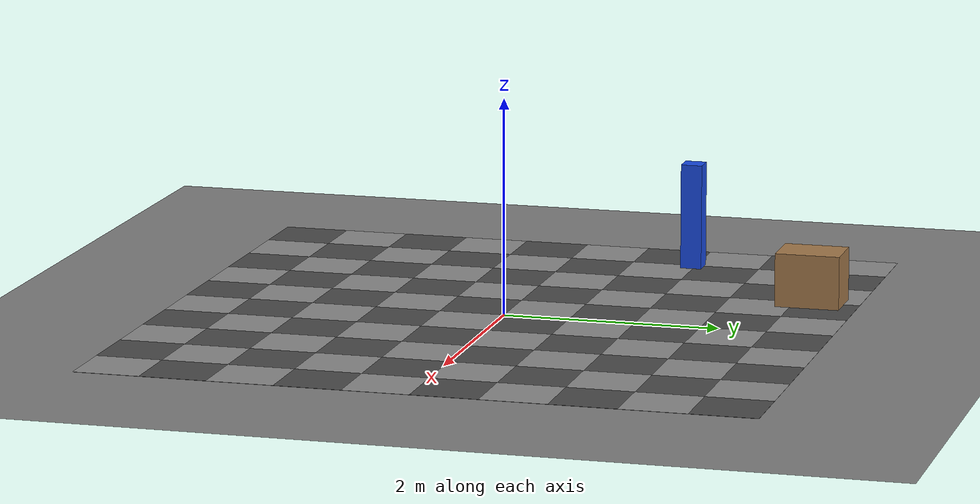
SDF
<sdf version="1.9">
 <world name="ecps295_camtest">
  <model name="ground_plane">
   <static>true</static>
   <link name="link">
    <collision name="collision">
     <geometry><plane><normal>0 0 1</normal><size>50 50</size></plane></geometry>
    </collision>
    <visual name="visual">
     <geometry><plane><normal>0 0 1</normal><size>50 50</size></plane></geometry>
     <material><ambient>0.5 0.5 0.5 1</ambient><diffuse>0.5 0.5 0.5 1</diffuse></material>
    </visual>
   </link>
  </model>
  <model name="eva_mat">
   <static>true</static>
   <link name="link">
    <visual name="t0_0">
     <pose>-2.745 -2.745 0.001 0 0 0</pose>
     <geometry><box><size>0.61 0.61 0.002</size></box></geometry>
     <material><ambient>0.3 0.3 0.3 1</ambient><diffuse>0.3 0.3 0.3 1</diffuse></material>
    </visual>
    <visual name="t0_1">
     <pose>-2.745 -2.135 0.001 0 0 0</pose>
     <geometry><box><size>0.61 0.61 0.002</size></box></geometry>
     <material><ambient>0.55 0.55 0.55 1</ambient><diffuse>0.55 0.55 0.55 1</diffuse></material>
    </visual>
    <visual name="t0_2">
     <pose>-2.745 -1.525 0.001 0 0 0</pose>
     <geometry><box><size>0.61 0.61 0.002</size></box></geometry>
     <material><ambient>0.3 0.3 0.3 1</ambient><diffuse>0.3 0.3 0.3 1</diffuse></material>
    </visual>
    <visual name="t0_3">
     <pose>-2.745 -0.915 0.001 0 0 0</pose>
     <geometry><box><size>0.61 0.61 0.002</size></box></geometry>
     <material><ambient>0.55 0.55 0.55 1</ambient><diffuse>0.55 0.55 0.55 1</diffuse></material>
    </visual>
    <visual name="t0_4">
     <pose>-2.745 -0.305 0.001 0 0 0</pose>
     <geometry><box><size>0.61 0.61 0.002</size></box></geometry>
     <material><ambient>0.3 0.3 0.3 1</ambient><diffuse>0.3 0.3 0.3 1</diffuse></material>
    </visual>
    <visual name="t0_5">
     <pose>-2.745 0.305 0.001 0 0 0</pose>
     <geometry><box><size>0.61 0.61 0.002</size></box></geometry>
     <material><ambient>0.55 0.55 0.55 1</ambient><diffuse>0.55 0.55 0.55 1</diffuse></material>
    </visual>
    <visual name="t0_6">
     <pose>-2.745 0.915 0.001 0 0 0</pose>
     <geometry><box><size>0.61 0.61 0.002</size></box></geometry>
     <material><ambient>0.3 0.3 0.3 1</ambient><diffuse>0.3 0.3 0.3 1</diffuse></material>
    </visual>
    <visual name="t0_7">
     <pose>-2.745 1.525 0.001 0 0 0</pose>
     <geometry><box><size>0.61 0.61 0.002</size></box></geometry>
     <material><ambient>0.55 0.55 0.55 1</ambient><diffuse>0.55 0.55 0.55 1</diffuse></material>
    </visual>
    <visual name="t0_8">
     <pose>-2.745 2.135 0.001 0 0 0</pose>
     <geometry><box><size>0.61 0.61 0.002</size></box></geometry>
     <material><ambient>0.3 0.3 0.3 1</ambient><diffuse>0.3 0.3 0.3 1</diffuse></material>
    </visual>
    <visual name="t0_9">
     <pose>-2.745 2.745 0.001 0 0 0</pose>
     <geometry><box><size>0.61 0.61 0.002</size></box></geometry>
     <material><ambient>0.55 0.55 0.55 1</ambient><diffuse>0.55 0.55 0.55 1</diffuse></material>
    </visual>
    <visual name="t1_0">
     <pose>-2.135 -2.745 0.001 0 0 0</pose>
     <geometry><box><size>0.61 0.61 0.002</size></box></geometry>
     <material><ambient>0.55 0.55 0.55 1</ambient><diffuse>0.55 0.55 0.55 1</diffuse></material>
    </visual>
    <visual name="t1_1">
     <pose>-2.135 -2.135 0.001 0 0 0</pose>
     <geometry><box><size>0.61 0.61 0.002</size></box></geometry>
     <material><ambient>0.3 0.3 0.3 1</ambient><diffuse>0.3 0.3 0.3 1</diffuse></material>
    </visual>
    <visual name="t1_2">
     <pose>-2.135 -1.525 0.001 0 0 0</pose>
     <geometry><box><size>0.61 0.61 0.002</size></box></geometry>
     <material><ambient>0.55 0.55 0.55 1</ambient><diffuse>0.55 0.55 0.55 1</diffuse></material>
    </visual>
    <visual name="t1_3">
     <pose>-2.135 -0.915 0.001 0 0 0</pose>
     <geometry><box><size>0.61 0.61 0.002</size></box></geometry>
     <material><ambient>0.3 0.3 0.3 1</ambient><diffuse>0.3 0.3 0.3 1</diffuse></material>
    </visual>
    <visual name="t1_4">
     <pose>-2.135 -0.305 0.001 0 0 0</pose>
     <geometry><box><size>0.61 0.61 0.002</size></box></geometry>
     <material><ambient>0.55 0.55 0.55 1</ambient><diffuse>0.55 0.55 0.55 1</diffuse></material>
    </visual>
    <visual name="t1_5">
     <pose>-2.135 0.305 0.001 0 0 0</pose>
     <geometry><box><size>0.61 0.61 0.002</size></box></geometry>
     <material><ambient>0.3 0.3 0.3 1</ambient><diffuse>0.3 0.3 0.3 1</diffuse></material>
    </visual>
    <visual name="t1_6">
     <pose>-2.135 0.915 0.001 0 0 0</pose>
     <geometry><box><size>0.61 0.61 0.002</size></box></geometry>
     <material><ambient>0.55 0.55 0.55 1</ambient><diffuse>0.55 0.55 0.55 1</diffuse></material>
    </visual>
    <visual name="t1_7">
     <pose>-2.135 1.525 0.001 0 0 0</pose>
     <geometry><box><size>0.61 0.61 0.002</size></box></geometry>
     <material><ambient>0.3 0.3 0.3 1</ambient><diffuse>0.3 0.3 0.3 1</diffuse></material>
    </visual>
    <visual name="t1_8">
     <pose>-2.135 2.135 0.001 0 0 0</pose>
     <geometry><box><size>0.61 0.61 0.002</size></box></geometry>
     <material><ambient>0.55 0.55 0.55 1</ambient><diffuse>0.55 0.55 0.55 1</diffuse></material>
    </visual>
    <visual name="t1_9">
     <pose>-2.135 2.745 0.001 0 0 0</pose>
     <geometry><box><size>0.61 0.61 0.002</size></box></geometry>
     <material><ambient>0.3 0.3 0.3 1</ambient><diffuse>0.3 0.3 0.3 1</diffuse></material>
    </visual>
    <visual name="t2_0">
     <pose>-1.525 -2.745 0.001 0 0 0</pose>
     <geometry><box><size>0.61 0.61 0.002</size></box></geometry>
     <material><ambient>0.3 0.3 0.3 1</ambient><diffuse>0.3 0.3 0.3 1</diffuse></material>
    </visual>
    <visual name="t2_1">
     <pose>-1.525 -2.135 0.001 0 0 0</pose>
     <geometry><box><size>0.61 0.61 0.002</size></box></geometry>
     <material><ambient>0.55 0.55 0.55 1</ambient><diffuse>0.55 0.55 0.55 1</diffuse></material>
    </visual>
    <visual name="t2_2">
     <pose>-1.525 -1.525 0.001 0 0 0</pose>
     <geometry><box><size>0.61 0.61 0.002</size></box></geometry>
     <material><ambient>0.3 0.3 0.3 1</ambient><diffuse>0.3 0.3 0.3 1</diffuse></material>
    </visual>
    <visual name="t2_3">
     <pose>-1.525 -0.915 0.001 0 0 0</pose>
     <geometry><box><size>0.61 0.61 0.002</size></box></geometry>
     <material><ambient>0.55 0.55 0.55 1</ambient><diffuse>0.55 0.55 0.55 1</diffuse></material>
    </visual>
    <visual name="t2_4">
     <pose>-1.525 -0.305 0.001 0 0 0</pose>
     <geometry><box><size>0.61 0.61 0.002</size></box></geometry>
     <material><ambient>0.3 0.3 0.3 1</ambient><diffuse>0.3 0.3 0.3 1</diffuse></material>
    </visual>
    <visual name="t2_5">
     <pose>-1.525 0.305 0.001 0 0 0</pose>
     <geometry><box><size>0.61 0.61 0.002</size></box></geometry>
     <material><ambient>0.55 0.55 0.55 1</ambient><diffuse>0.55 0.55 0.55 1</diffuse></material>
    </visual>
    <visual name="t2_6">
     <pose>-1.525 0.915 0.001 0 0 0</pose>
     <geometry><box><size>0.61 0.61 0.002</size></box></geometry>
     <material><ambient>0.3 0.3 0.3 1</ambient><diffuse>0.3 0.3 0.3 1</diffuse></material>
    </visual>
    <visual name="t2_7">
     <pose>-1.525 1.525 0.001 0 0 0</pose>
     <geometry><box><size>0.61 0.61 0.002</size></box></geometry>
     <material><ambient>0.55 0.55 0.55 1</ambient><diffuse>0.55 0.55 0.55 1</diffuse></material>
    </visual>
    <visual name="t2_8">
     <pose>-1.525 2.135 0.001 0 0 0</pose>
     <geometry><box><size>0.61 0.61 0.002</size></box></geometry>
     <material><ambient>0.3 0.3 0.3 1</ambient><diffuse>0.3 0.3 0.3 1</diffuse></material>
    </visual>
    <visual name="t2_9">
     <pose>-1.525 2.745 0.001 0 0 0</pose>
     <geometry><box><size>0.61 0.61 0.002</size></box></geometry>
     <material><ambient>0.55 0.55 0.55 1</ambient><diffuse>0.55 0.55 0.55 1</diffuse></material>
    </visual>
    <visual name="t3_0">
     <pose>-0.915 -2.745 0.001 0 0 0</pose>
     <geometry><box><size>0.61 0.61 0.002</size></box></geometry>
     <material><ambient>0.55 0.55 0.55 1</ambient><diffuse>0.55 0.55 0.55 1</diffuse></material>
    </visual>
    <visual name="t3_1">
     <pose>-0.915 -2.135 0.001 0 0 0</pose>
     <geometry><box><size>0.61 0.61 0.002</size></box></geometry>
     <material><ambient>0.3 0.3 0.3 1</ambient><diffuse>0.3 0.3 0.3 1</diffuse></material>
    </visual>
    <visual name="t3_2">
     <pose>-0.915 -1.525 0.001 0 0 0</pose>
     <geometry><box><size>0.61 0.61 0.002</size></box></geometry>
     <material><ambient>0.55 0.55 0.55 1</ambient><diffuse>0.55 0.55 0.55 1</diffuse></material>
    </visual>
    <visual name="t3_3">
     <pose>-0.915 -0.915 0.001 0 0 0</pose>
     <geometry><box><size>0.61 0.61 0.002</size></box></geometry>
     <material><ambient>0.3 0.3 0.3 1</ambient><diffuse>0.3 0.3 0.3 1</diffuse></material>
    </visual>
    <visual name="t3_4">
     <pose>-0.915 -0.305 0.001 0 0 0</pose>
     <geometry><box><size>0.61 0.61 0.002</size></box></geometry>
     <material><ambient>0.55 0.55 0.55 1</ambient><diffuse>0.55 0.55 0.55 1</diffuse></material>
    </visual>
    <visual name="t3_5">
     <pose>-0.915 0.305 0.001 0 0 0</pose>
     <geometry><box><size>0.61 0.61 0.002</size></box></geometry>
     <material><ambient>0.3 0.3 0.3 1</ambient><diffuse>0.3 0.3 0.3 1</diffuse></material>
    </visual>
    <visual name="t3_6">
     <pose>-0.915 0.915 0.001 0 0 0</pose>
     <geometry><box><size>0.61 0.61 0.002</size></box></geometry>
     <material><ambient>0.55 0.55 0.55 1</ambient><diffuse>0.55 0.55 0.55 1</diffuse></material>
    </visual>
    <visual name="t3_7">
     <pose>-0.915 1.525 0.001 0 0 0</pose>
     <geometry><box><size>0.61 0.61 0.002</size></box></geometry>
     <material><ambient>0.3 0.3 0.3 1</ambient><diffuse>0.3 0.3 0.3 1</diffuse></material>
    </visual>
    <visual name="t3_8">
     <pose>-0.915 2.135 0.001 0 0 0</pose>
     <geometry><box><size>0.61 0.61 0.002</size></box></geometry>
     <material><ambient>0.55 0.55 0.55 1</ambient><diffuse>0.55 0.55 0.55 1</diffuse></material>
    </visual>
    <visual name="t3_9">
     <pose>-0.915 2.745 0.001 0 0 0</pose>
     <geometry><box><size>0.61 0.61 0.002</size></box></geometry>
     <material><ambient>0.3 0.3 0.3 1</ambient><diffuse>0.3 0.3 0.3 1</diffuse></material>
    </visual>
    <visual name="t4_0">
     <pose>-0.305 -2.745 0.001 0 0 0</pose>
     <geometry><box><size>0.61 0.61 0.002</size></box></geometry>
     <material><ambient>0.3 0.3 0.3 1</ambient><diffuse>0.3 0.3 0.3 1</diffuse></material>
    </visual>
    <visual name="t4_1">
     <pose>-0.305 -2.135 0.001 0 0 0</pose>
     <geometry><box><size>0.61 0.61 0.002</size></box></geometry>
     <material><ambient>0.55 0.55 0.55 1</ambient><diffuse>0.55 0.55 0.55 1</diffuse></material>
    </visual>
    <visual name="t4_2">
     <pose>-0.305 -1.525 0.001 0 0 0</pose>
     <geometry><box><size>0.61 0.61 0.002</size></box></geometry>
     <material><ambient>0.3 0.3 0.3 1</ambient><diffuse>0.3 0.3 0.3 1</diffuse></material>
    </visual>
    <visual name="t4_3">
     <pose>-0.305 -0.915 0.001 0 0 0</pose>
     <geometry><box><size>0.61 0.61 0.002</size></box></geometry>
     <material><ambient>0.55 0.55 0.55 1</ambient><diffuse>0.55 0.55 0.55 1</diffuse></material>
    </visual>
    <visual name="t4_4">
     <pose>-0.305 -0.305 0.001 0 0 0</pose>
     <geometry><box><size>0.61 0.61 0.002</size></box></geometry>
     <material><ambient>0.3 0.3 0.3 1</ambient><diffuse>0.3 0.3 0.3 1</diffuse></material>
    </visual>
    <visual name="t4_5">
     <pose>-0.305 0.305 0.001 0 0 0</pose>
     <geometry><box><size>0.61 0.61 0.002</size></box></geometry>
     <material><ambient>0.55 0.55 0.55 1</ambient><diffuse>0.55 0.55 0.55 1</diffuse></material>
    </visual>
    <visual name="t4_6">
     <pose>-0.305 0.915 0.001 0 0 0</pose>
     <geometry><box><size>0.61 0.61 0.002</size></box></geometry>
     <material><ambient>0.3 0.3 0.3 1</ambient><diffuse>0.3 0.3 0.3 1</diffuse></material>
    </visual>
    <visual name="t4_7">
     <pose>-0.305 1.525 0.001 0 0 0</pose>
     <geometry><box><size>0.61 0.61 0.002</size></box></geometry>
     <material><ambient>0.55 0.55 0.55 1</ambient><diffuse>0.55 0.55 0.55 1</diffuse></material>
    </visual>
    <visual name="t4_8">
     <pose>-0.305 2.135 0.001 0 0 0</pose>
     <geometry><box><size>0.61 0.61 0.002</size></box></geometry>
     <material><ambient>0.3 0.3 0.3 1</ambient><diffuse>0.3 0.3 0.3 1</diffuse></material>
    </visual>
    <visual name="t4_9">
     <pose>-0.305 2.745 0.001 0 0 0</pose>
     <geometry><box><size>0.61 0.61 0.002</size></box></geometry>
     <material><ambient>0.55 0.55 0.55 1</ambient><diffuse>0.55 0.55 0.55 1</diffuse></material>
    </visual>
    <visual name="t5_0">
     <pose>0.305 -2.745 0.001 0 0 0</pose>
     <geometry><box><size>0.61 0.61 0.002</size></box></geometry>
     <material><ambient>0.55 0.55 0.55 1</ambient><diffuse>0.55 0.55 0.55 1</diffuse></material>
    </visual>
    <visual name="t5_1">
     <pose>0.305 -2.135 0.001 0 0 0</pose>
     <geometry><box><size>0.61 0.61 0.002</size></box></geometry>
     <material><ambient>0.3 0.3 0.3 1</ambient><diffuse>0.3 0.3 0.3 1</diffuse></material>
    </visual>
    <visual name="t5_2">
     <pose>0.305 -1.525 0.001 0 0 0</pose>
     <geometry><box><size>0.61 0.61 0.002</size></box></geometry>
     <material><ambient>0.55 0.55 0.55 1</ambient><diffuse>0.55 0.55 0.55 1</diffuse></material>
    </visual>
    <visual name="t5_3">
     <pose>0.305 -0.915 0.001 0 0 0</pose>
     <geometry><box><size>0.61 0.61 0.002</size></box></geometry>
     <material><ambient>0.3 0.3 0.3 1</ambient><diffuse>0.3 0.3 0.3 1</diffuse></material>
    </visual>
    <visual name="t5_4">
     <pose>0.305 -0.305 0.001 0 0 0</pose>
     <geometry><box><size>0.61 0.61 0.002</size></box></geometry>
     <material><ambient>0.55 0.55 0.55 1</ambient><diffuse>0.55 0.55 0.55 1</diffuse></material>
    </visual>
    <visual name="t5_5">
     <pose>0.305 0.305 0.001 0 0 0</pose>
     <geometry><box><size>0.61 0.61 0.002</size></box></geometry>
     <material><ambient>0.3 0.3 0.3 1</ambient><diffuse>0.3 0.3 0.3 1</diffuse></material>
    </visual>
    <visual name="t5_6">
     <pose>0.305 0.915 0.001 0 0 0</pose>
     <geometry><box><size>0.61 0.61 0.002</size></box></geometry>
     <material><ambient>0.55 0.55 0.55 1</ambient><diffuse>0.55 0.55 0.55 1</diffuse></material>
    </visual>
    <visual name="t5_7">
     <pose>0.305 1.525 0.001 0 0 0</pose>
     <geometry><box><size>0.61 0.61 0.002</size></box></geometry>
     <material><ambient>0.3 0.3 0.3 1</ambient><diffuse>0.3 0.3 0.3 1</diffuse></material>
    </visual>
    <visual name="t5_8">
     <pose>0.305 2.135 0.001 0 0 0</pose>
     <geometry><box><size>0.61 0.61 0.002</size></box></geometry>
     <material><ambient>0.55 0.55 0.55 1</ambient><diffuse>0.55 0.55 0.55 1</diffuse></material>
    </visual>
    <visual name="t5_9">
     <pose>0.305 2.745 0.001 0 0 0</pose>
     <geometry><box><size>0.61 0.61 0.002</size></box></geometry>
     <material><ambient>0.3 0.3 0.3 1</ambient><diffuse>0.3 0.3 0.3 1</diffuse></material>
    </visual>
    <visual name="t6_0">
     <pose>0.915 -2.745 0.001 0 0 0</pose>
     <geometry><box><size>0.61 0.61 0.002</size></box></geometry>
     <material><ambient>0.3 0.3 0.3 1</ambient><diffuse>0.3 0.3 0.3 1</diffuse></material>
    </visual>
    <visual name="t6_1">
     <pose>0.915 -2.135 0.001 0 0 0</pose>
     <geometry><box><size>0.61 0.61 0.002</size></box></geometry>
     <material><ambient>0.55 0.55 0.55 1</ambient><diffuse>0.55 0.55 0.55 1</diffuse></material>
    </visual>
    <visual name="t6_2">
     <pose>0.915 -1.525 0.001 0 0 0</pose>
     <geometry><box><size>0.61 0.61 0.002</size></box></geometry>
     <material><ambient>0.3 0.3 0.3 1</ambient><diffuse>0.3 0.3 0.3 1</diffuse></material>
    </visual>
    <visual name="t6_3">
     <pose>0.915 -0.915 0.001 0 0 0</pose>
     <geometry><box><size>0.61 0.61 0.002</size></box></geometry>
     <material><ambient>0.55 0.55 0.55 1</ambient><diffuse>0.55 0.55 0.55 1</diffuse></material>
    </visual>
    <visual name="t6_4">
     <pose>0.915 -0.305 0.001 0 0 0</pose>
     <geometry><box><size>0.61 0.61 0.002</size></box></geometry>
     <material><ambient>0.3 0.3 0.3 1</ambient><diffuse>0.3 0.3 0.3 1</diffuse></material>
    </visual>
    <visual name="t6_5">
     <pose>0.915 0.305 0.001 0 0 0</pose>
     <geometry><box><size>0.61 0.61 0.002</size></box></geometry>
     <material><ambient>0.55 0.55 0.55 1</ambient><diffuse>0.55 0.55 0.55 1</diffuse></material>
    </visual>
    <visual name="t6_6">
     <pose>0.915 0.915 0.001 0 0 0</pose>
     <geometry><box><size>0.61 0.61 0.002</size></box></geometry>
     <material><ambient>0.3 0.3 0.3 1</ambient><diffuse>0.3 0.3 0.3 1</diffuse></material>
    </visual>
    <visual name="t6_7">
     <pose>0.915 1.525 0.001 0 0 0</pose>
     <geometry><box><size>0.61 0.61 0.002</size></box></geometry>
     <material><ambient>0.55 0.55 0.55 1</ambient><diffuse>0.55 0.55 0.55 1</diffuse></material>
    </visual>
    <visual name="t6_8">
     <pose>0.915 2.135 0.001 0 0 0</pose>
     <geometry><box><size>0.61 0.61 0.002</size></box></geometry>
     <material><ambient>0.3 0.3 0.3 1</ambient><diffuse>0.3 0.3 0.3 1</diffuse></material>
    </visual>
    <visual name="t6_9">
     <pose>0.915 2.745 0.001 0 0 0</pose>
     <geometry><box><size>0.61 0.61 0.002</size></box></geometry>
     <material><ambient>0.55 0.55 0.55 1</ambient><diffuse>0.55 0.55 0.55 1</diffuse></material>
    </visual>
    <visual name="t7_0">
     <pose>1.525 -2.745 0.001 0 0 0</pose>
     <geometry><box><size>0.61 0.61 0.002</size></box></geometry>
     <material><ambient>0.55 0.55 0.55 1</ambient><diffuse>0.55 0.55 0.55 1</diffuse></material>
    </visual>
    <visual name="t7_1">
     <pose>1.525 -2.135 0.001 0 0 0</pose>
     <geometry><box><size>0.61 0.61 0.002</size></box></geometry>
     <material><ambient>0.3 0.3 0.3 1</ambient><diffuse>0.3 0.3 0.3 1</diffuse></material>
    </visual>
    <visual name="t7_2">
     <pose>1.525 -1.525 0.001 0 0 0</pose>
     <geometry><box><size>0.61 0.61 0.002</size></box></geometry>
     <material><ambient>0.55 0.55 0.55 1</ambient><diffuse>0.55 0.55 0.55 1</diffuse></material>
    </visual>
    <visual name="t7_3">
     <pose>1.525 -0.915 0.001 0 0 0</pose>
     <geometry><box><size>0.61 0.61 0.002</size></box></geometry>
     <material><ambient>0.3 0.3 0.3 1</ambient><diffuse>0.3 0.3 0.3 1</diffuse></material>
    </visual>
    <visual name="t7_4">
     <pose>1.525 -0.305 0.001 0 0 0</pose>
     <geometry><box><size>0.61 0.61 0.002</size></box></geometry>
     <material><ambient>0.55 0.55 0.55 1</ambient><diffuse>0.55 0.55 0.55 1</diffuse></material>
    </visual>
    <visual name="t7_5">
     <pose>1.525 0.305 0.001 0 0 0</pose>
     <geometry><box><size>0.61 0.61 0.002</size></box></geometry>
     <material><ambient>0.3 0.3 0.3 1</ambient><diffuse>0.3 0.3 0.3 1</diffuse></material>
    </visual>
    <visual name="t7_6">
     <pose>1.525 0.915 0.001 0 0 0</pose>
     <geometry><box><size>0.61 0.61 0.002</size></box></geometry>
     <material><ambient>0.55 0.55 0.55 1</ambient><diffuse>0.55 0.55 0.55 1</diffuse></material>
    </visual>
    <visual name="t7_7">
     <pose>1.525 1.525 0.001 0 0 0</pose>
     <geometry><box><size>0.61 0.61 0.002</size></box></geometry>
     <material><ambient>0.3 0.3 0.3 1</ambient><diffuse>0.3 0.3 0.3 1</diffuse></material>
    </visual>
    <visual name="t7_8">
     <pose>1.525 2.135 0.001 0 0 0</pose>
     <geometry><box><size>0.61 0.61 0.002</size></box></geometry>
     <material><ambient>0.55 0.55 0.55 1</ambient><diffuse>0.55 0.55 0.55 1</diffuse></material>
    </visual>
    <visual name="t7_9">
     <pose>1.525 2.745 0.001 0 0 0</pose>
     <geometry><box><size>0.61 0.61 0.002</size></box></geometry>
     <material><ambient>0.3 0.3 0.3 1</ambient><diffuse>0.3 0.3 0.3 1</diffuse></material>
    </visual>
    <visual name="t8_0">
     <pose>2.135 -2.745 0.001 0 0 0</pose>
     <geometry><box><size>0.61 0.61 0.002</size></box></geometry>
     <material><ambient>0.3 0.3 0.3 1</ambient><diffuse>0.3 0.3 0.3 1</diffuse></material>
    </visual>
    <visual name="t8_1">
     <pose>2.135 -2.135 0.001 0 0 0</pose>
     <geometry><box><size>0.61 0.61 0.002</size></box></geometry>
     <material><ambient>0.55 0.55 0.55 1</ambient><diffuse>0.55 0.55 0.55 1</diffuse></material>
    </visual>
    <visual name="t8_2">
     <pose>2.135 -1.525 0.001 0 0 0</pose>
     <geometry><box><size>0.61 0.61 0.002</size></box></geometry>
     <material><ambient>0.3 0.3 0.3 1</ambient><diffuse>0.3 0.3 0.3 1</diffuse></material>
    </visual>
    <visual name="t8_3">
     <pose>2.135 -0.915 0.001 0 0 0</pose>
     <geometry><box><size>0.61 0.61 0.002</size></box></geometry>
     <material><ambient>0.55 0.55 0.55 1</ambient><diffuse>0.55 0.55 0.55 1</diffuse></material>
    </visual>
    <visual name="t8_4">
     <pose>2.135 -0.305 0.001 0 0 0</pose>
     <geometry><box><size>0.61 0.61 0.002</size></box></geometry>
     <material><ambient>0.3 0.3 0.3 1</ambient><diffuse>0.3 0.3 0.3 1</diffuse></material>
    </visual>
    <visual name="t8_5">
     <pose>2.135 0.305 0.001 0 0 0</pose>
     <geometry><box><size>0.61 0.61 0.002</size></box></geometry>
     <material><ambient>0.55 0.55 0.55 1</ambient><diffuse>0.55 0.55 0.55 1</diffuse></material>
    </visual>
    <visual name="t8_6">
     <pose>2.135 0.915 0.001 0 0 0</pose>
     <geometry><box><size>0.61 0.61 0.002</size></box></geometry>
     <material><ambient>0.3 0.3 0.3 1</ambient><diffuse>0.3 0.3 0.3 1</diffuse></material>
    </visual>
    <visual name="t8_7">
     <pose>2.135 1.525 0.001 0 0 0</pose>
     <geometry><box><size>0.61 0.61 0.002</size></box></geometry>
     <material><ambient>0.55 0.55 0.55 1</ambient><diffuse>0.55 0.55 0.55 1</diffuse></material>
    </visual>
    <visual name="t8_8">
     <pose>2.135 2.135 0.001 0 0 0</pose>
     <geometry><box><size>0.61 0.61 0.002</size></box></geometry>
     <material><ambient>0.3 0.3 0.3 1</ambient><diffuse>0.3 0.3 0.3 1</diffuse></material>
    </visual>
    <visual name="t8_9">
     <pose>2.135 2.745 0.001 0 0 0</pose>
     <geometry><box><size>0.61 0.61 0.002</size></box></geometry>
     <material><ambient>0.55 0.55 0.55 1</ambient><diffuse>0.55 0.55 0.55 1</diffuse></material>
    </visual>
    <visual name="t9_0">
     <pose>2.745 -2.745 0.001 0 0 0</pose>
     <geometry><box><size>0.61 0.61 0.002</size></box></geometry>
     <material><ambient>0.55 0.55 0.55 1</ambient><diffuse>0.55 0.55 0.55 1</diffuse></material>
    </visual>
    <visual name="t9_1">
     <pose>2.745 -2.135 0.001 0 0 0</pose>
     <geometry><box><size>0.61 0.61 0.002</size></box></geometry>
     <material><ambient>0.3 0.3 0.3 1</ambient><diffuse>0.3 0.3 0.3 1</diffuse></material>
    </visual>
    <visual name="t9_2">
     <pose>2.745 -1.525 0.001 0 0 0</pose>
     <geometry><box><size>0.61 0.61 0.002</size></box></geometry>
     <material><ambient>0.55 0.55 0.55 1</ambient><diffuse>0.55 0.55 0.55 1</diffuse></material>
    </visual>
    <visual name="t9_3">
     <pose>2.745 -0.915 0.001 0 0 0</pose>
     <geometry><box><size>0.61 0.61 0.002</size></box></geometry>
     <material><ambient>0.3 0.3 0.3 1</ambient><diffuse>0.3 0.3 0.3 1</diffuse></material>
    </visual>
    <visual name="t9_4">
     <pose>2.745 -0.305 0.001 0 0 0</pose>
     <geometry><box><size>0.61 0.61 0.002</size></box></geometry>
     <material><ambient>0.55 0.55 0.55 1</ambient><diffuse>0.55 0.55 0.55 1</diffuse></material>
    </visual>
    <visual name="t9_5">
     <pose>2.745 0.305 0.001 0 0 0</pose>
     <geometry><box><size>0.61 0.61 0.002</size></box></geometry>
     <material><ambient>0.3 0.3 0.3 1</ambient><diffuse>0.3 0.3 0.3 1</diffuse></material>
    </visual>
    <visual name="t9_6">
     <pose>2.745 0.915 0.001 0 0 0</pose>
     <geometry><box><size>0.61 0.61 0.002</size></box></geometry>
     <material><ambient>0.55 0.55 0.55 1</ambient><diffuse>0.55 0.55 0.55 1</diffuse></material>
    </visual>
    <visual name="t9_7">
     <pose>2.745 1.525 0.001 0 0 0</pose>
     <geometry><box><size>0.61 0.61 0.002</size></box></geometry>
     <material><ambient>0.3 0.3 0.3 1</ambient><diffuse>0.3 0.3 0.3 1</diffuse></material>
    </visual>
    <visual name="t9_8">
     <pose>2.745 2.135 0.001 0 0 0</pose>
     <geometry><box><size>0.61 0.61 0.002</size></box></geometry>
     <material><ambient>0.55 0.55 0.55 1</ambient><diffuse>0.55 0.55 0.55 1</diffuse></material>
    </visual>
    <visual name="t9_9">
     <pose>2.745 2.745 0.001 0 0 0</pose>
     <geometry><box><size>0.61 0.61 0.002</size></box></geometry>
     <material><ambient>0.3 0.3 0.3 1</ambient><diffuse>0.3 0.3 0.3 1</diffuse></material>
    </visual>
   </link>
  </model>
  <model name="box_c">
   <static>true</static>
   <pose>-1.2 2.6 0.25 0 0 0</pose>
   <link name="link">
    <collision name="c"><geometry><box><size>0.45 0.6 0.5</size></box></geometry></collision>
    <visual name="v">
     <geometry><box><size>0.45 0.6 0.5</size></box></geometry>
     <material><ambient>0.65 0.48 0.30 1</ambient><diffuse>0.65 0.48 0.30 1</diffuse></material>
    </visual>
   </link>
  </model>
  <model name="marker_left">
   <static>true</static>
   <pose>-2.4 1.2 0.5 0 0 0</pose>
   <link name="link">
    <collision name="c"><geometry><box><size>0.2 0.2 1.0</size></box></geometry></collision>
    <visual name="v">
     <geometry><box><size>0.2 0.2 1.0</size></box></geometry>
     <material><ambient>0.10 0.30 0.90 1</ambient><diffuse>0.10 0.30 0.90 1</diffuse></material>
    </visual>
   </link>
  </model>
 </world>
</sdf>
